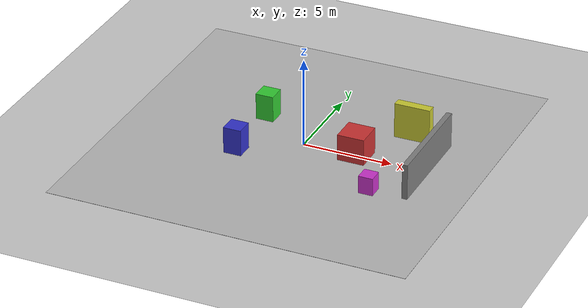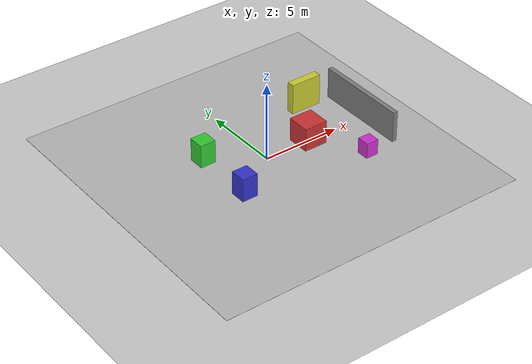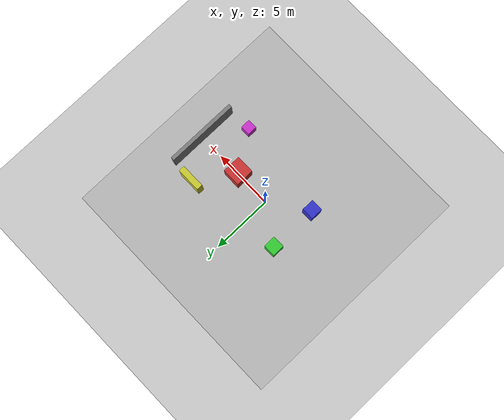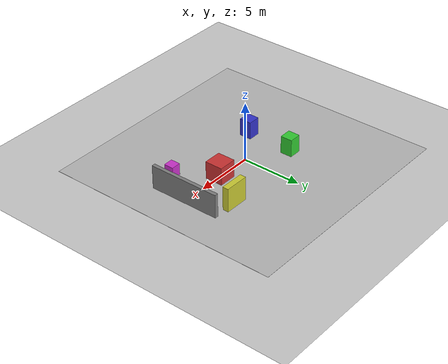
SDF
<?xml version="1.0" ?>
<sdf version="1.5">
  <world name="simple_obstacles">
    <!-- Physics -->
    <physics type='ode'>
      <gravity>0 0 -9.8066</gravity>
      <ode>
        <solver>
          <type>quick</type>
          <iters>10</iters>
          <sor>1.3</sor>
        </solver>
        <constraints>
          <cfm>0.00001</cfm>
          <erp>0.2</erp>
          <contact_max_correcting_vel>1000</contact_max_correcting_vel>
          <contact_surface_layer>0.01</contact_surface_layer>
        </constraints>
      </ode>
      <max_step_size>0.004</max_step_size>
      <real_time_factor>1.0</real_time_factor>
      <real_time_update_rate>250</real_time_update_rate>
      <magnetic_field>6.0e-6 2.3e-5 -4.2e-5</magnetic_field>
    </physics>

    <!-- Camera -->
    <gui fullscreen='0'>
      <camera name='user_camera'>
        <pose>-8.0 0.0 6.0 0 0.5 0.0</pose>
        <view_controller>orbit</view_controller>
      </camera>
    </gui>

    <!-- Light -->
    <light type="directional" name="sun">
      <cast_shadows>false</cast_shadows>
      <pose>0 0 100 0 0 0</pose>
      <diffuse>0.8 0.8 0.8 1</diffuse>
      <specular>0.9 0.9 0.9 1</specular>
      <attenuation>
        <range>1000</range>
        <constant>0.9</constant>
        <linear>0.01</linear>
        <quadratic>0.001</quadratic>
      </attenuation>
      <direction>0.2 0.2 -0.9</direction>
    </light>

    <scene>
      <shadows>0</shadows>
    </scene>

    <!-- Ground -->
    <include>
      <uri>model://ground_plane</uri>
    </include>

    <!-- Ground texture -->
    <model name='texture'>
      <static>true</static>
      <link name="prometheus_logo">
        <pose frame=''> 0.0 0.0 0.0 0.0 0.0 0.0</pose>
        <visual name="visual">
            <cast_shadows>false</cast_shadows>
            <geometry>
              <box>
                <size>20.0 20.0 0.01</size>
              </box>
            </geometry>
            <material>
              <script>
                <uri>model://prometheus_texture/texture.material</uri>
                <name>prometheus_logo2</name>
              </script>
            </material>
        </visual>
      </link>
    </model>

    <!-- Box obstacles for SLAM testing -->
    <model name='box1'>
      <static>true</static>
      <link name='link'>
        <pose>3.0 0.0 0.75 0 0 0</pose>
        <collision name='collision'>
          <geometry><box><size>1.5 1.5 1.5</size></box></geometry>
        </collision>
        <visual name='visual'>
          <geometry><box><size>1.5 1.5 1.5</size></box></geometry>
          <material><ambient>0.8 0.2 0.2 1</ambient><diffuse>0.8 0.2 0.2 1</diffuse></material>
        </visual>
      </link>
    </model>

    <model name='box2'>
      <static>true</static>
      <link name='link'>
        <pose>-3.0 2.0 0.75 0 0 0</pose>
        <collision name='collision'>
          <geometry><box><size>1.0 1.0 1.5</size></box></geometry>
        </collision>
        <visual name='visual'>
          <geometry><box><size>1.0 1.0 1.5</size></box></geometry>
          <material><ambient>0.2 0.8 0.2 1</ambient><diffuse>0.2 0.8 0.2 1</diffuse></material>
        </visual>
      </link>
    </model>

    <model name='box3'>
      <static>true</static>
      <link name='link'>
        <pose>-3.0 -2.0 0.75 0 0 0</pose>
        <collision name='collision'>
          <geometry><box><size>1.0 1.0 1.5</size></box></geometry>
        </collision>
        <visual name='visual'>
          <geometry><box><size>1.0 1.0 1.5</size></box></geometry>
          <material><ambient>0.2 0.2 0.8 1</ambient><diffuse>0.2 0.2 0.8 1</diffuse></material>
        </visual>
      </link>
    </model>

    <model name='box4'>
      <static>true</static>
      <link name='link'>
        <pose>5.0 3.0 1.0 0 0 0</pose>
        <collision name='collision'>
          <geometry><box><size>2.0 0.5 2.0</size></box></geometry>
        </collision>
        <visual name='visual'>
          <geometry><box><size>2.0 0.5 2.0</size></box></geometry>
          <material><ambient>0.8 0.8 0.2 1</ambient><diffuse>0.8 0.8 0.2 1</diffuse></material>
        </visual>
      </link>
    </model>

    <model name='box5'>
      <static>true</static>
      <link name='link'>
        <pose>5.0 -3.0 0.5 0 0 0</pose>
        <collision name='collision'>
          <geometry><box><size>0.8 0.8 1.0</size></box></geometry>
        </collision>
        <visual name='visual'>
          <geometry><box><size>0.8 0.8 1.0</size></box></geometry>
          <material><ambient>0.8 0.2 0.8 1</ambient><diffuse>0.8 0.2 0.8 1</diffuse></material>
        </visual>
      </link>
    </model>

    <!-- Wall for SLAM feature -->
    <model name='wall1'>
      <static>true</static>
      <link name='link'>
        <pose>7.0 0.0 1.0 0 0 0</pose>
        <collision name='collision'>
          <geometry><box><size>0.3 6.0 2.0</size></box></geometry>
        </collision>
        <visual name='visual'>
          <geometry><box><size>0.3 6.0 2.0</size></box></geometry>
          <material><ambient>0.5 0.5 0.5 1</ambient><diffuse>0.5 0.5 0.5 1</diffuse></material>
        </visual>
      </link>
    </model>

  </world>
</sdf>
